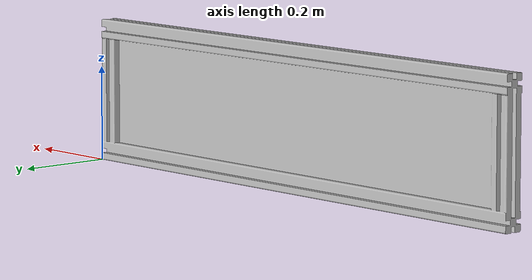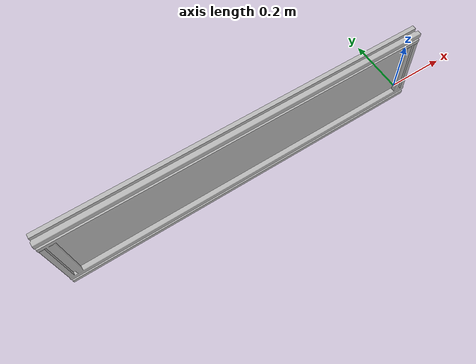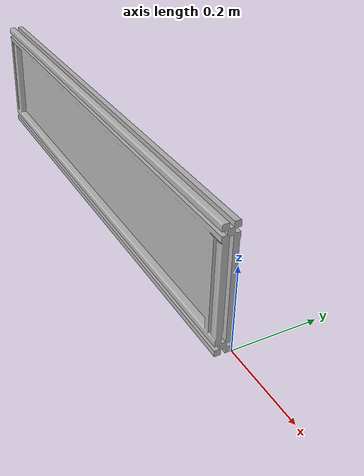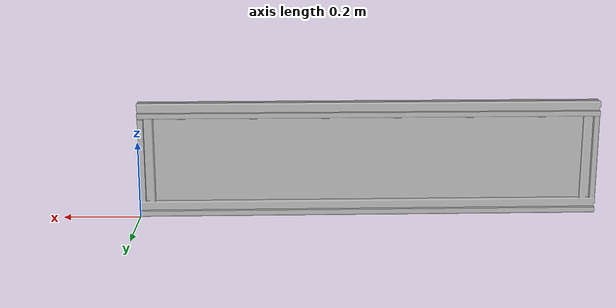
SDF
<?xml version="1.0" ?>
<sdf version="1.5">
  <model name="Wall_1200x300x40_90degree">
    <static>true</static>
    <link name="link">
      <pose>0 0 0 0 0 0</pose>
      <collision name="collision">
        <geometry>
          <mesh>
            <uri>model://wall_1200x300x40_90degree/meshes/wall_1200x300x40_90degree.dae</uri>
          </mesh>
        </geometry>
      </collision>
      <visual name="visual">
        <geometry>
          <mesh>
            <uri>model://wall_1200x300x40_90degree/meshes/wall_1200x300x40_90degree.dae</uri>
          </mesh>
        </geometry>
      </visual>
    </link>
  </model>
</sdf>
